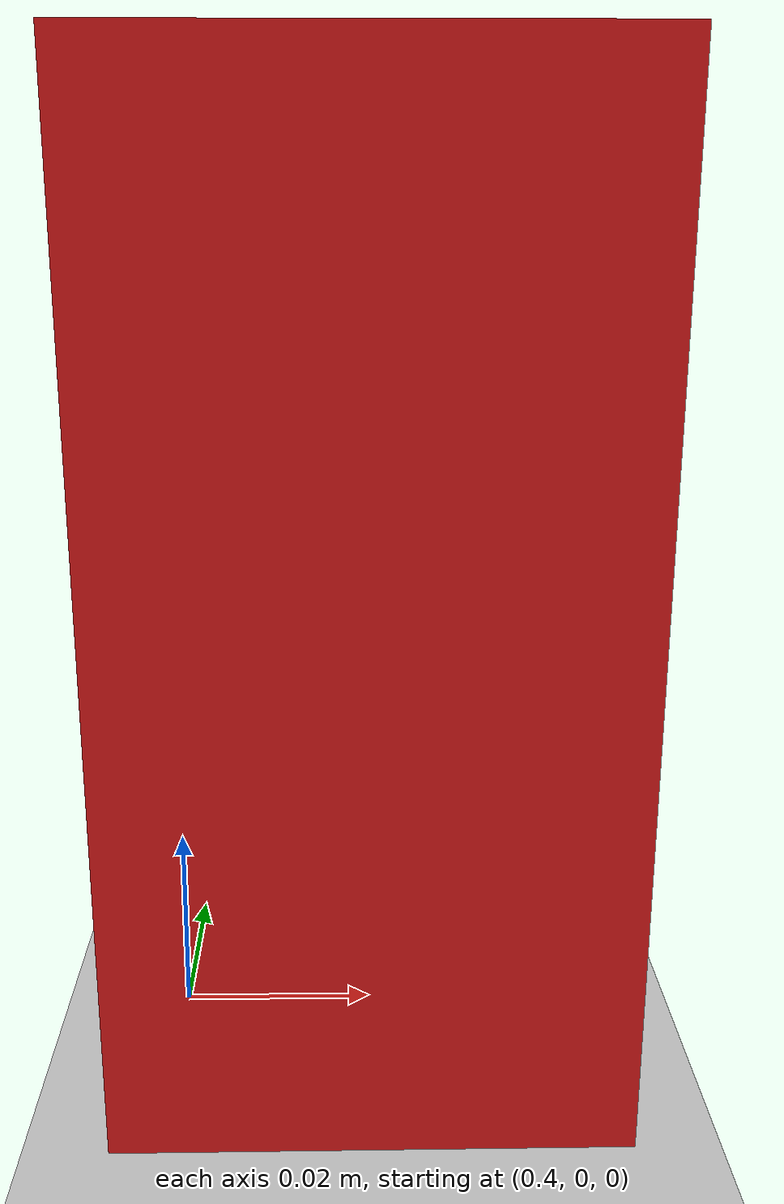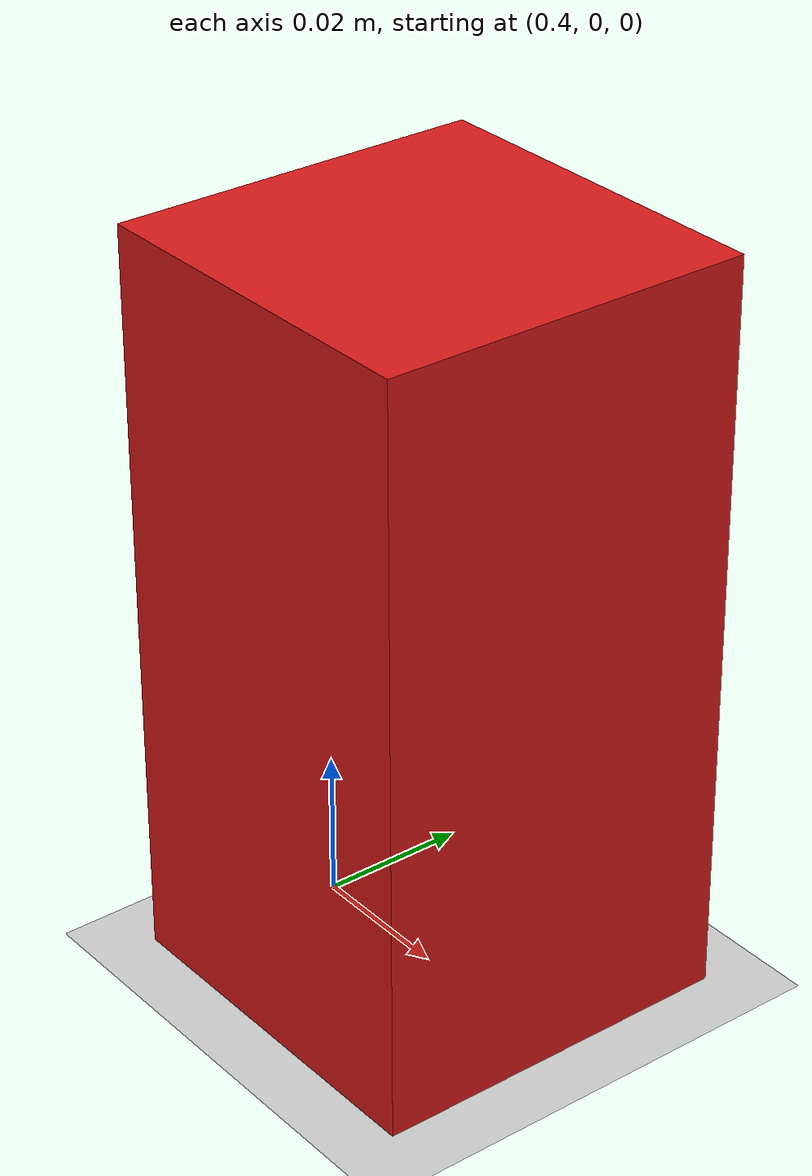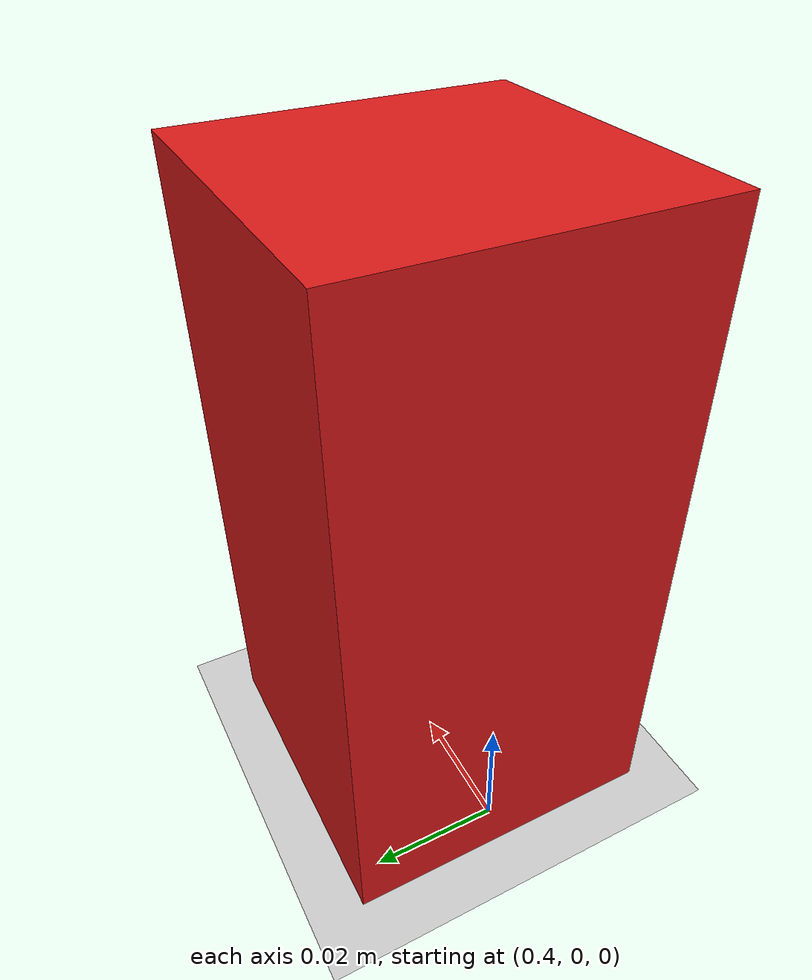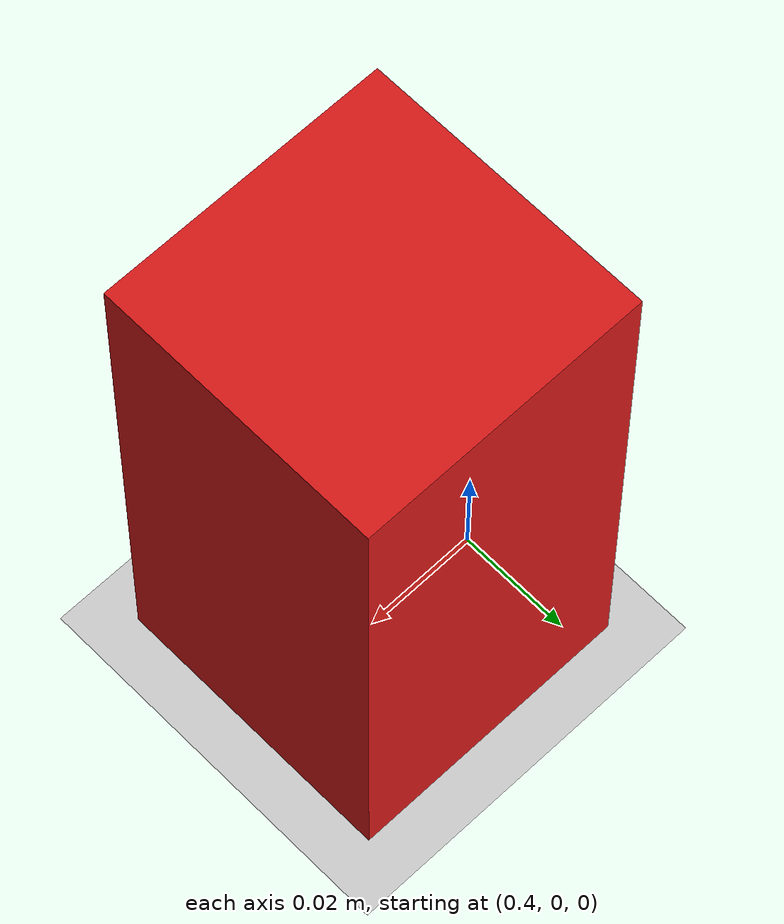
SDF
<?xml version="1.0" ?>
<sdf version="1.7">
  <world name="default">
    <plugin filename="libignition-gazebo-physics-system.so" name="ignition::gazebo::systems::Physics"/>
    <plugin filename="libignition-gazebo-user-commands-system.so" name="ignition::gazebo::systems::UserCommands"/>
    <plugin filename="libignition-gazebo-scene-broadcaster-system.so" name="ignition::gazebo::systems::SceneBroadcaster"/>

    <light type="directional" name="sun">
      <cast_shadows>true</cast_shadows>
      <pose>0 0 10 0 0 0</pose>
      <diffuse>0.8 0.8 0.8 1</diffuse>
      <specular>0.2 0.2 0.2 1</specular>
      <attenuation>
        <range>1000</range>
        <constant>0.9</constant>
        <linear>0.01</linear>
        <quadratic>0.001</quadratic>
      </attenuation>
      <direction>-0.5 0.2 -1</direction>
    </light>

    <model name="ground_plane">
      <static>true</static>
      <link name="link">
        <collision name="collision">
          <geometry>
            <plane>
              <normal>0 0 1</normal>
              <size>20 20</size>
            </plane>
          </geometry>
        </collision>
        <visual name="visual">
          <geometry>
            <plane>
              <normal>0 0 1</normal>
              <size>20 20</size>
            </plane>
          </geometry>
          <material>
            <ambient>0.8 0.8 0.8 1</ambient>
            <diffuse>0.8 0.8 0.8 1</diffuse>
          </material>
        </visual>
      </link>
    </model>

    <model name="demo_box">
      <pose>0.42 0.0 0.05 0 0 0</pose>
      <link name="link">
        <inertial>
          <mass>0.2</mass>
          <inertia>
            <ixx>0.0006</ixx>
            <iyy>0.0006</iyy>
            <izz>0.0006</izz>
            <ixy>0</ixy>
            <ixz>0</ixz>
            <iyz>0</iyz>
          </inertia>
        </inertial>
        <collision name="collision">
          <geometry>
            <box>
              <size>0.05 0.05 0.10</size>
            </box>
          </geometry>
        </collision>
        <visual name="visual">
          <geometry>
            <box>
              <size>0.05 0.05 0.10</size>
            </box>
          </geometry>
          <material>
            <ambient>0.85 0.1 0.1 1</ambient>
            <diffuse>0.85 0.1 0.1 1</diffuse>
          </material>
        </visual>
      </link>
    </model>
  </world>
</sdf>
